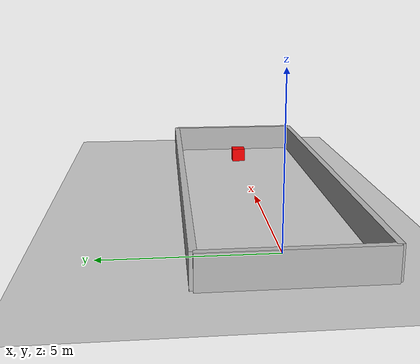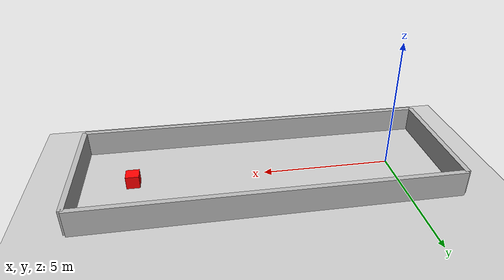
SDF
<?xml version="1.0"?>
<sdf version="1.6">
  <world name="simple_arena">
    <include><uri>model://sun</uri></include>
    <include><uri>model://ground_plane</uri></include>

    <model name='target_box'>
      <pose>10.0 0.0 0.25 0 0 0</pose>
      <static>true</static>
      <link name='link'>
        <collision name='collision'><geometry><box><size>0.5 0.5 0.5</size></box></geometry></collision>
        <visual name='visual'>
          <geometry><box><size>0.5 0.5 0.5</size></box></geometry>
          <material><ambient>1 0 0 1</ambient></material>
        </visual>
      </link>
    </model>

    <model name='wall_north'>
      <pose>12.0 0 0.5 0 0 0</pose>
      <static>true</static>
      <link name='link'>
        <collision name='collision'><geometry><box><size>0.2 5.0 1</size></box></geometry></collision>
        <visual name='visual'><geometry><box><size>0.2 5.0 1</size></box></geometry></visual>
      </link>
    </model>
    <model name='wall_south'>
      <pose>-2.0 0 0.5 0 0 0</pose>
      <static>true</static>
      <link name='link'>
        <collision name='collision'><geometry><box><size>0.2 5.0 1</size></box></geometry></collision>
        <visual name='visual'><geometry><box><size>0.2 5.0 1</size></box></geometry></visual>
      </link>
    </model>
    <model name='wall_east'>
      <pose>5.0 2.5 0.5 0 0 0</pose>
      <static>true</static>
      <link name='link'>
        <collision name='collision'><geometry><box><size>14.0 0.2 1</size></box></geometry></collision>
        <visual name='visual'><geometry><box><size>14.0 0.2 1</size></box></geometry></visual>
      </link>
    </model>
    <model name='wall_west'>
      <pose>5.0 -2.5 0.5 0 0 0</pose>
      <static>true</static>
      <link name='link'>
        <collision name='collision'><geometry><box><size>14.0 0.2 1</size></box></geometry></collision>
        <visual name='visual'><geometry><box><size>14.0 0.2 1</size></box></geometry></visual>
      </link>
    </model>
  </world>
</sdf>
